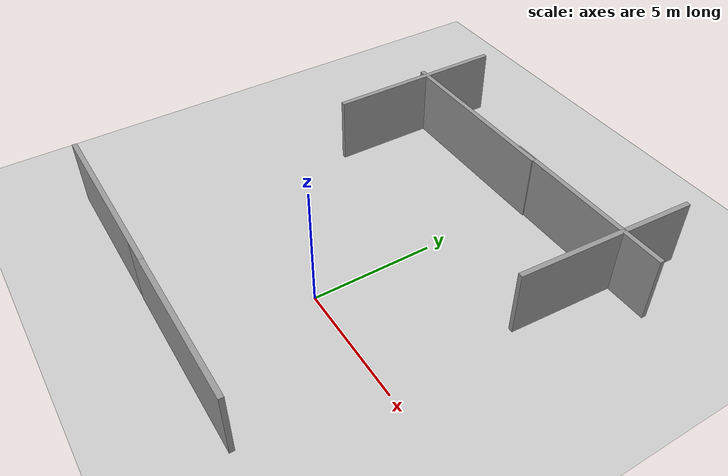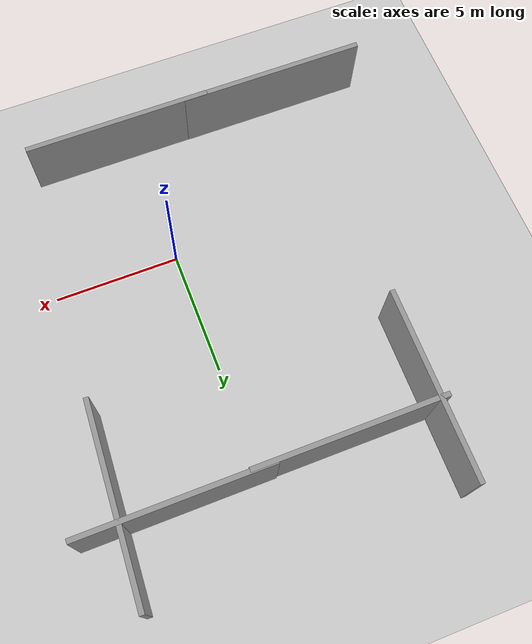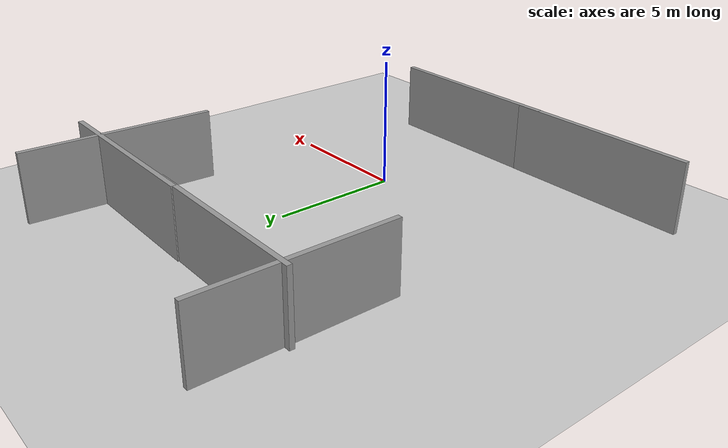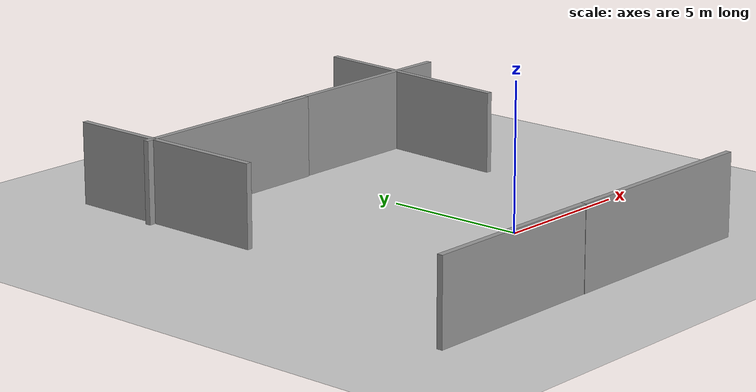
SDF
<sdf version="1.7">
 <world name="default">
  <model name="ground_plane">
   <static>1</static>
   <link name="link">
    <collision name="collision">
     <geometry><plane><normal>0 0 1</normal><size>100 100</size></plane></geometry>
     <surface><friction><ode><mu>100</mu><mu2>50</mu2></ode></friction></surface>
    </collision>
    <visual name="visual">
     <cast_shadows>0</cast_shadows>
     <geometry><plane><normal>0 0 1</normal><size>100 100</size></plane></geometry>
     <material>
      <script><uri>file://media/materials/scripts/gazebo.material</uri><name>Gazebo/Grey</name></script>
     </material>
    </visual>
   </link>
  </model>
  <light name="sun" type="directional">
   <pose>0 0 10 0 -0 0</pose>
   <diffuse>0.8 0.8 0.8 1</diffuse>
   <specular>0.2 0.2 0.2 1</specular>
   <attenuation>
    <range>1000</range>
    <constant>0.9</constant>
    <linear>0.01</linear>
    <quadratic>0.001</quadratic>
   </attenuation>
   <direction>-0.5 0.1 -0.9</direction>
   <spot><inner_angle>0</inner_angle><outer_angle>0</outer_angle><falloff>0</falloff></spot>
  </light>
  <scene><shadows>0</shadows><ambient>0.4 0.4 0.4 1</ambient><background>0.7 0.7 0.7 1</background></scene>
  <physics type="ode">
   <real_time_update_rate>1000</real_time_update_rate>
   <max_step_size>0.001</max_step_size>
   <real_time_factor>1</real_time_factor>
   <ode>
    <solver>
     <type>quick</type>
     <iters>150</iters>
     <precon_iters>0</precon_iters>
     <sor>1.4</sor>
     <use_dynamic_moi_rescaling>1</use_dynamic_moi_rescaling>
    </solver>
    <constraints>
     <cfm>1e-05</cfm>
     <erp>0.2</erp>
     <contact_max_correcting_vel>2000</contact_max_correcting_vel>
     <contact_surface_layer>0.01</contact_surface_layer>
    </constraints>
   </ode>
  </physics>
  <gravity>0 0 -9.8</gravity>
  <magnetic_field>6e-06 2.3e-05 -4.2e-05</magnetic_field>
  <atmosphere type="adiabatic"/>
  <audio><device>default</device></audio>
  <spherical_coordinates>
   <surface_model>EARTH_WGS84</surface_model>
   <latitude_deg>0</latitude_deg>
   <longitude_deg>0</longitude_deg>
   <elevation>0</elevation>
   <heading_deg>0</heading_deg>
  </spherical_coordinates>
  <model name="grey_wall">
   <static>1</static>
   <link name="link">
    <pose>0 0 1.4 0 -0 0</pose>
    <collision name="collision"><geometry><box><size>7.5 0.2 2.8</size></box></geometry></collision>
    <visual name="visual">
     <cast_shadows>0</cast_shadows>
     <geometry><box><size>7.5 0.2 2.8</size></box></geometry>
     <material>
      <script>
       <uri>model://grey_wall/materials/scripts</uri>
       <uri>model://grey_wall/materials/textures</uri>
       <name>vrc/grey_wall</name>
      </script>
     </material>
    </visual>
   </link>
   <pose>-6.11612 -5.21691 0 0 -0 0</pose>
  </model>
  <model name="grey_wall_0">
   <static>1</static>
   <link name="link">
    <pose>0 0 1.4 0 -0 0</pose>
    <collision name="collision"><geometry><box><size>7.5 0.2 2.8</size></box></geometry></collision>
    <visual name="visual">
     <cast_shadows>0</cast_shadows>
     <geometry><box><size>7.5 0.2 2.8</size></box></geometry>
     <material>
      <script>
       <uri>model://grey_wall/materials/scripts</uri>
       <uri>model://grey_wall/materials/textures</uri>
       <name>vrc/grey_wall</name>
      </script>
     </material>
    </visual>
   </link>
   <pose>0.418049 -5.22803 0 0 -0 0</pose>
  </model>
  <model name="grey_wall_0_clone">
   <static>1</static>
   <link name="link">
    <pose>0 0 1.4 0 -0 0</pose>
    <collision name="collision"><geometry><box><size>7.5 0.2 2.8</size></box></geometry></collision>
    <visual name="visual">
     <cast_shadows>0</cast_shadows>
     <geometry><box><size>7.5 0.2 2.8</size></box></geometry>
     <material>
      <script>
       <uri>model://grey_wall/materials/scripts</uri>
       <uri>model://grey_wall/materials/textures</uri>
       <name>vrc/grey_wall</name>
      </script>
     </material>
    </visual>
   </link>
   <pose>-3.24971 9.48126 0 0 -0 0</pose>
  </model>
  <model name="grey_wall_clone">
   <static>1</static>
   <link name="link">
    <pose>0 0 1.4 0 -0 0</pose>
    <collision name="collision"><geometry><box><size>7.5 0.2 2.8</size></box></geometry></collision>
    <visual name="visual">
     <cast_shadows>0</cast_shadows>
     <geometry><box><size>7.5 0.2 2.8</size></box></geometry>
     <material>
      <script>
       <uri>model://grey_wall/materials/scripts</uri>
       <uri>model://grey_wall/materials/textures</uri>
       <name>vrc/grey_wall</name>
      </script>
     </material>
    </visual>
   </link>
   <pose>3.2231 9.52834 0 0 -0 0</pose>
  </model>
  <model name="grey_wall_clone_0">
   <static>1</static>
   <link name="link">
    <pose>0 0 1.4 0 -0 0</pose>
    <collision name="collision"><geometry><box><size>7.5 0.2 2.8</size></box></geometry></collision>
    <visual name="visual">
     <cast_shadows>0</cast_shadows>
     <geometry><box><size>7.5 0.2 2.8</size></box></geometry>
     <material>
      <script>
       <uri>model://grey_wall/materials/scripts</uri>
       <uri>model://grey_wall/materials/textures</uri>
       <name>vrc/grey_wall</name>
      </script>
     </material>
    </visual>
   </link>
   <pose>-6.66823 8.95662 0 0 0 -1.58032</pose>
  </model>
  <model name="grey_wall_0_clone_0">
   <static>1</static>
   <link name="link">
    <pose>0 0 1.4 0 -0 0</pose>
    <collision name="collision"><geometry><box><size>7.5 0.2 2.8</size></box></geometry></collision>
    <visual name="visual">
     <cast_shadows>0</cast_shadows>
     <geometry><box><size>7.5 0.2 2.8</size></box></geometry>
     <material>
      <script>
       <uri>model://grey_wall/materials/scripts</uri>
       <uri>model://grey_wall/materials/textures</uri>
       <name>vrc/grey_wall</name>
      </script>
     </material>
    </visual>
   </link>
   <pose>5.15145 8.83274 0 0 0 -1.6304</pose>
  </model>
 </world>
</sdf>
